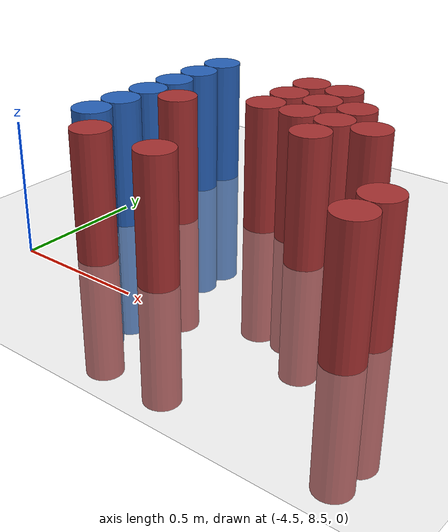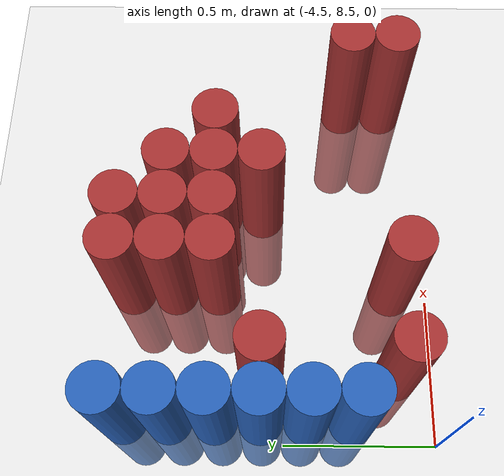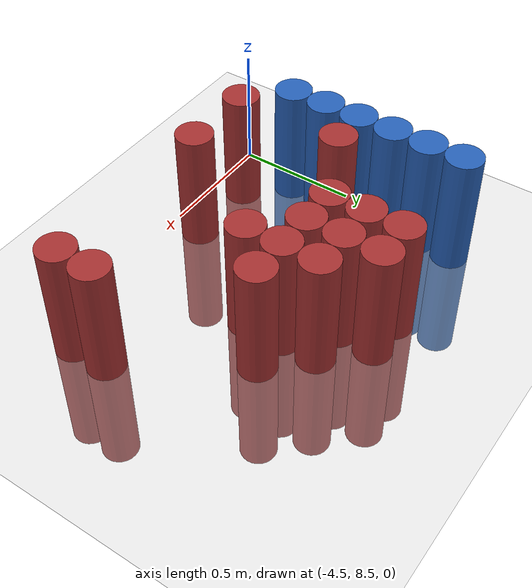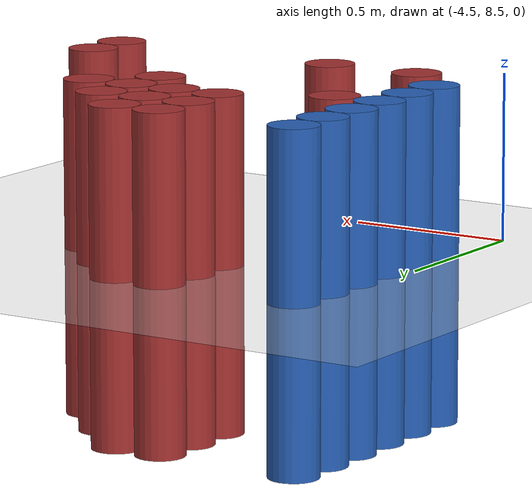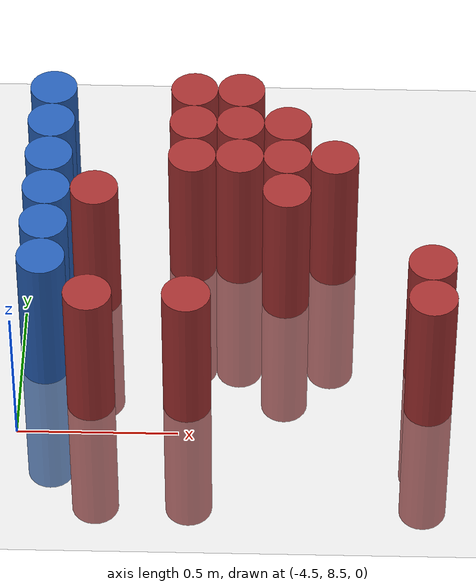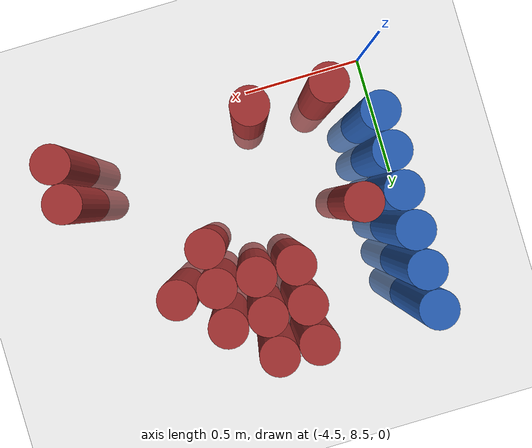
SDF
<sdf version="1.6">
 <world name="default">
  <model name="ground_plane">
   <static>1</static>
   <link name="link">
    <collision name="collision">
     <geometry><plane><normal>0 0 1</normal><size>100 100</size></plane></geometry>
     <surface><friction><ode><mu>100</mu><mu2>50</mu2></ode></friction></surface>
    </collision>
    <visual name="visual">
     <cast_shadows>0</cast_shadows>
     <geometry><plane><normal>0 0 1</normal><size>100 100</size></plane></geometry>
     <material>
      <script><uri>file://media/materials/scripts/gazebo.material</uri><name>Gazebo/Grey</name></script>
     </material>
    </visual>
   </link>
  </model>
  <model name="unit_cylinder_120">
   <static>1</static>
   <pose>-4.425000 8.775000 0.000000 0.000000 0.000000 0.000000</pose>
   <link name="link">
    <inertial>
     <mass>1</mass>
     <inertia><ixx>0.145833</ixx><ixy>0</ixy><ixz>0</ixz><iyy>0.145833</iyy><iyz>0</iyz><izz>0.125</izz></inertia>
    </inertial>
    <collision name="collision">
     <geometry><cylinder><radius>0.075000</radius><length>1</length></cylinder></geometry>
    </collision>
    <visual name="visual">
     <geometry><cylinder><radius>0.075000</radius><length>1</length></cylinder></geometry>
     <material>
      <ambient>0.152000 0.379000 0.720000 1</ambient>
      <diffuse>0.152000 0.379000 0.720000 1</diffuse>
     </material>
     <material>
      <script><name>Gazebo/Grey</name><uri>file://media/materials/scripts/gazebo.material</uri></script>
     </material>
    </visual>
    <sensor name="sensor_contact" type="contact"><contact><collision>collision</collision></contact></sensor>
   </link>
   <plugin filename="gz-sim-touchplugin-system" name="gz::sim::systems::TouchPlugin">
    <target>robot</target>
    <namespace>robot</namespace>
    <time>0.001</time>
    <enabled>true</enabled>
   </plugin>
  </model>
  <model name="unit_cylinder_121">
   <static>1</static>
   <pose>-4.425000 8.925000 0.000000 0.000000 0.000000 0.000000</pose>
   <link name="link">
    <inertial>
     <mass>1</mass>
     <inertia><ixx>0.145833</ixx><ixy>0</ixy><ixz>0</ixz><iyy>0.145833</iyy><iyz>0</iyz><izz>0.125</izz></inertia>
    </inertial>
    <collision name="collision">
     <geometry><cylinder><radius>0.075000</radius><length>1</length></cylinder></geometry>
    </collision>
    <visual name="visual">
     <geometry><cylinder><radius>0.075000</radius><length>1</length></cylinder></geometry>
     <material>
      <ambient>0.152000 0.379000 0.720000 1</ambient>
      <diffuse>0.152000 0.379000 0.720000 1</diffuse>
     </material>
     <material>
      <script><name>Gazebo/Grey</name><uri>file://media/materials/scripts/gazebo.material</uri></script>
     </material>
    </visual>
    <sensor name="sensor_contact" type="contact"><contact><collision>collision</collision></contact></sensor>
   </link>
   <plugin filename="gz-sim-touchplugin-system" name="gz::sim::systems::TouchPlugin">
    <target>robot</target>
    <namespace>robot</namespace>
    <time>0.001</time>
    <enabled>true</enabled>
   </plugin>
  </model>
  <model name="unit_cylinder_122">
   <static>1</static>
   <pose>-4.425000 9.075000 0.000000 0.000000 0.000000 0.000000</pose>
   <link name="link">
    <inertial>
     <mass>1</mass>
     <inertia><ixx>0.145833</ixx><ixy>0</ixy><ixz>0</ixz><iyy>0.145833</iyy><iyz>0</iyz><izz>0.125</izz></inertia>
    </inertial>
    <collision name="collision">
     <geometry><cylinder><radius>0.075000</radius><length>1</length></cylinder></geometry>
    </collision>
    <visual name="visual">
     <geometry><cylinder><radius>0.075000</radius><length>1</length></cylinder></geometry>
     <material>
      <ambient>0.152000 0.379000 0.720000 1</ambient>
      <diffuse>0.152000 0.379000 0.720000 1</diffuse>
     </material>
     <material>
      <script><name>Gazebo/Grey</name><uri>file://media/materials/scripts/gazebo.material</uri></script>
     </material>
    </visual>
    <sensor name="sensor_contact" type="contact"><contact><collision>collision</collision></contact></sensor>
   </link>
   <plugin filename="gz-sim-touchplugin-system" name="gz::sim::systems::TouchPlugin">
    <target>robot</target>
    <namespace>robot</namespace>
    <time>0.001</time>
    <enabled>true</enabled>
   </plugin>
  </model>
  <model name="unit_cylinder_123">
   <static>1</static>
   <pose>-4.425000 9.225000 0.000000 0.000000 0.000000 0.000000</pose>
   <link name="link">
    <inertial>
     <mass>1</mass>
     <inertia><ixx>0.145833</ixx><ixy>0</ixy><ixz>0</ixz><iyy>0.145833</iyy><iyz>0</iyz><izz>0.125</izz></inertia>
    </inertial>
    <collision name="collision">
     <geometry><cylinder><radius>0.075000</radius><length>1</length></cylinder></geometry>
    </collision>
    <visual name="visual">
     <geometry><cylinder><radius>0.075000</radius><length>1</length></cylinder></geometry>
     <material>
      <ambient>0.152000 0.379000 0.720000 1</ambient>
      <diffuse>0.152000 0.379000 0.720000 1</diffuse>
     </material>
     <material>
      <script><name>Gazebo/Grey</name><uri>file://media/materials/scripts/gazebo.material</uri></script>
     </material>
    </visual>
    <sensor name="sensor_contact" type="contact"><contact><collision>collision</collision></contact></sensor>
   </link>
   <plugin filename="gz-sim-touchplugin-system" name="gz::sim::systems::TouchPlugin">
    <target>robot</target>
    <namespace>robot</namespace>
    <time>0.001</time>
    <enabled>true</enabled>
   </plugin>
  </model>
  <model name="unit_cylinder_124">
   <static>1</static>
   <pose>-4.425000 9.375000 0.000000 0.000000 0.000000 0.000000</pose>
   <link name="link">
    <inertial>
     <mass>1</mass>
     <inertia><ixx>0.145833</ixx><ixy>0</ixy><ixz>0</ixz><iyy>0.145833</iyy><iyz>0</iyz><izz>0.125</izz></inertia>
    </inertial>
    <collision name="collision">
     <geometry><cylinder><radius>0.075000</radius><length>1</length></cylinder></geometry>
    </collision>
    <visual name="visual">
     <geometry><cylinder><radius>0.075000</radius><length>1</length></cylinder></geometry>
     <material>
      <ambient>0.152000 0.379000 0.720000 1</ambient>
      <diffuse>0.152000 0.379000 0.720000 1</diffuse>
     </material>
     <material>
      <script><name>Gazebo/Grey</name><uri>file://media/materials/scripts/gazebo.material</uri></script>
     </material>
    </visual>
    <sensor name="sensor_contact" type="contact"><contact><collision>collision</collision></contact></sensor>
   </link>
   <plugin filename="gz-sim-touchplugin-system" name="gz::sim::systems::TouchPlugin">
    <target>robot</target>
    <namespace>robot</namespace>
    <time>0.001</time>
    <enabled>true</enabled>
   </plugin>
  </model>
  <model name="unit_cylinder_125">
   <static>1</static>
   <pose>-4.425000 9.525000 0.000000 0.000000 0.000000 0.000000</pose>
   <link name="link">
    <inertial>
     <mass>1</mass>
     <inertia><ixx>0.145833</ixx><ixy>0</ixy><ixz>0</ixz><iyy>0.145833</iyy><iyz>0</iyz><izz>0.125</izz></inertia>
    </inertial>
    <collision name="collision">
     <geometry><cylinder><radius>0.075000</radius><length>1</length></cylinder></geometry>
    </collision>
    <visual name="visual">
     <geometry><cylinder><radius>0.075000</radius><length>1</length></cylinder></geometry>
     <material>
      <ambient>0.152000 0.379000 0.720000 1</ambient>
      <diffuse>0.152000 0.379000 0.720000 1</diffuse>
     </material>
     <material>
      <script><name>Gazebo/Grey</name><uri>file://media/materials/scripts/gazebo.material</uri></script>
     </material>
    </visual>
    <sensor name="sensor_contact" type="contact"><contact><collision>collision</collision></contact></sensor>
   </link>
   <plugin filename="gz-sim-touchplugin-system" name="gz::sim::systems::TouchPlugin">
    <target>robot</target>
    <namespace>robot</namespace>
    <time>0.001</time>
    <enabled>true</enabled>
   </plugin>
  </model>
  <model name="unit_cylinder_142">
   <static>1</static>
   <pose>-4.275000 8.625000 0.000000 0.000000 0.000000 0.000000</pose>
   <link name="link">
    <inertial>
     <mass>1</mass>
     <inertia><ixx>0.145833</ixx><ixy>0</ixy><ixz>0</ixz><iyy>0.145833</iyy><iyz>0</iyz><izz>0.125</izz></inertia>
    </inertial>
    <collision name="collision">
     <geometry><cylinder><radius>0.075000</radius><length>1</length></cylinder></geometry>
    </collision>
    <visual name="visual">
     <geometry><cylinder><radius>0.075000</radius><length>1</length></cylinder></geometry>
     <material>
      <ambient>0.648000 0.192000 0.192000 1</ambient>
      <diffuse>0.648000 0.192000 0.192000 1</diffuse>
     </material>
     <material>
      <script><name>Gazebo/Grey</name><uri>file://media/materials/scripts/gazebo.material</uri></script>
     </material>
    </visual>
    <sensor name="sensor_contact" type="contact"><contact><collision>collision</collision></contact></sensor>
   </link>
   <plugin filename="gz-sim-touchplugin-system" name="gz::sim::systems::TouchPlugin">
    <target>robot</target>
    <namespace>robot</namespace>
    <time>0.001</time>
    <enabled>true</enabled>
   </plugin>
  </model>
  <model name="unit_cylinder_143">
   <static>1</static>
   <pose>-4.275000 9.075000 0.000000 0.000000 0.000000 0.000000</pose>
   <link name="link">
    <inertial>
     <mass>1</mass>
     <inertia><ixx>0.145833</ixx><ixy>0</ixy><ixz>0</ixz><iyy>0.145833</iyy><iyz>0</iyz><izz>0.125</izz></inertia>
    </inertial>
    <collision name="collision">
     <geometry><cylinder><radius>0.075000</radius><length>1</length></cylinder></geometry>
    </collision>
    <visual name="visual">
     <geometry><cylinder><radius>0.075000</radius><length>1</length></cylinder></geometry>
     <material>
      <ambient>0.648000 0.192000 0.192000 1</ambient>
      <diffuse>0.648000 0.192000 0.192000 1</diffuse>
     </material>
     <material>
      <script><name>Gazebo/Grey</name><uri>file://media/materials/scripts/gazebo.material</uri></script>
     </material>
    </visual>
    <sensor name="sensor_contact" type="contact"><contact><collision>collision</collision></contact></sensor>
   </link>
   <plugin filename="gz-sim-touchplugin-system" name="gz::sim::systems::TouchPlugin">
    <target>robot</target>
    <namespace>robot</namespace>
    <time>0.001</time>
    <enabled>true</enabled>
   </plugin>
  </model>
  <model name="unit_cylinder_160">
   <static>1</static>
   <pose>-3.975000 8.625000 0.000000 0.000000 0.000000 0.000000</pose>
   <link name="link">
    <inertial>
     <mass>1</mass>
     <inertia><ixx>0.145833</ixx><ixy>0</ixy><ixz>0</ixz><iyy>0.145833</iyy><iyz>0</iyz><izz>0.125</izz></inertia>
    </inertial>
    <collision name="collision">
     <geometry><cylinder><radius>0.075000</radius><length>1</length></cylinder></geometry>
    </collision>
    <visual name="visual">
     <geometry><cylinder><radius>0.075000</radius><length>1</length></cylinder></geometry>
     <material>
      <ambient>0.648000 0.192000 0.192000 1</ambient>
      <diffuse>0.648000 0.192000 0.192000 1</diffuse>
     </material>
     <material>
      <script><name>Gazebo/Grey</name><uri>file://media/materials/scripts/gazebo.material</uri></script>
     </material>
    </visual>
    <sensor name="sensor_contact" type="contact"><contact><collision>collision</collision></contact></sensor>
   </link>
   <plugin filename="gz-sim-touchplugin-system" name="gz::sim::systems::TouchPlugin">
    <target>robot</target>
    <namespace>robot</namespace>
    <time>0.001</time>
    <enabled>true</enabled>
   </plugin>
  </model>
  <model name="unit_cylinder_161">
   <static>1</static>
   <pose>-3.975000 9.225000 0.000000 0.000000 0.000000 0.000000</pose>
   <link name="link">
    <inertial>
     <mass>1</mass>
     <inertia><ixx>0.145833</ixx><ixy>0</ixy><ixz>0</ixz><iyy>0.145833</iyy><iyz>0</iyz><izz>0.125</izz></inertia>
    </inertial>
    <collision name="collision">
     <geometry><cylinder><radius>0.075000</radius><length>1</length></cylinder></geometry>
    </collision>
    <visual name="visual">
     <geometry><cylinder><radius>0.075000</radius><length>1</length></cylinder></geometry>
     <material>
      <ambient>0.648000 0.192000 0.192000 1</ambient>
      <diffuse>0.648000 0.192000 0.192000 1</diffuse>
     </material>
     <material>
      <script><name>Gazebo/Grey</name><uri>file://media/materials/scripts/gazebo.material</uri></script>
     </material>
    </visual>
    <sensor name="sensor_contact" type="contact"><contact><collision>collision</collision></contact></sensor>
   </link>
   <plugin filename="gz-sim-touchplugin-system" name="gz::sim::systems::TouchPlugin">
    <target>robot</target>
    <namespace>robot</namespace>
    <time>0.001</time>
    <enabled>true</enabled>
   </plugin>
  </model>
  <model name="unit_cylinder_162">
   <static>1</static>
   <pose>-3.975000 9.375000 0.000000 0.000000 0.000000 0.000000</pose>
   <link name="link">
    <inertial>
     <mass>1</mass>
     <inertia><ixx>0.145833</ixx><ixy>0</ixy><ixz>0</ixz><iyy>0.145833</iyy><iyz>0</iyz><izz>0.125</izz></inertia>
    </inertial>
    <collision name="collision">
     <geometry><cylinder><radius>0.075000</radius><length>1</length></cylinder></geometry>
    </collision>
    <visual name="visual">
     <geometry><cylinder><radius>0.075000</radius><length>1</length></cylinder></geometry>
     <material>
      <ambient>0.648000 0.192000 0.192000 1</ambient>
      <diffuse>0.648000 0.192000 0.192000 1</diffuse>
     </material>
     <material>
      <script><name>Gazebo/Grey</name><uri>file://media/materials/scripts/gazebo.material</uri></script>
     </material>
    </visual>
    <sensor name="sensor_contact" type="contact"><contact><collision>collision</collision></contact></sensor>
   </link>
   <plugin filename="gz-sim-touchplugin-system" name="gz::sim::systems::TouchPlugin">
    <target>robot</target>
    <namespace>robot</namespace>
    <time>0.001</time>
    <enabled>true</enabled>
   </plugin>
  </model>
  <model name="unit_cylinder_163">
   <static>1</static>
   <pose>-3.975000 9.525000 0.000000 0.000000 0.000000 0.000000</pose>
   <link name="link">
    <inertial>
     <mass>1</mass>
     <inertia><ixx>0.145833</ixx><ixy>0</ixy><ixz>0</ixz><iyy>0.145833</iyy><iyz>0</iyz><izz>0.125</izz></inertia>
    </inertial>
    <collision name="collision">
     <geometry><cylinder><radius>0.075000</radius><length>1</length></cylinder></geometry>
    </collision>
    <visual name="visual">
     <geometry><cylinder><radius>0.075000</radius><length>1</length></cylinder></geometry>
     <material>
      <ambient>0.648000 0.192000 0.192000 1</ambient>
      <diffuse>0.648000 0.192000 0.192000 1</diffuse>
     </material>
     <material>
      <script><name>Gazebo/Grey</name><uri>file://media/materials/scripts/gazebo.material</uri></script>
     </material>
    </visual>
    <sensor name="sensor_contact" type="contact"><contact><collision>collision</collision></contact></sensor>
   </link>
   <plugin filename="gz-sim-touchplugin-system" name="gz::sim::systems::TouchPlugin">
    <target>robot</target>
    <namespace>robot</namespace>
    <time>0.001</time>
    <enabled>true</enabled>
   </plugin>
  </model>
  <model name="unit_cylinder_168">
   <static>1</static>
   <pose>-3.825000 9.225000 0.000000 0.000000 0.000000 0.000000</pose>
   <link name="link">
    <inertial>
     <mass>1</mass>
     <inertia><ixx>0.145833</ixx><ixy>0</ixy><ixz>0</ixz><iyy>0.145833</iyy><iyz>0</iyz><izz>0.125</izz></inertia>
    </inertial>
    <collision name="collision">
     <geometry><cylinder><radius>0.075000</radius><length>1</length></cylinder></geometry>
    </collision>
    <visual name="visual">
     <geometry><cylinder><radius>0.075000</radius><length>1</length></cylinder></geometry>
     <material>
      <ambient>0.648000 0.192000 0.192000 1</ambient>
      <diffuse>0.648000 0.192000 0.192000 1</diffuse>
     </material>
     <material>
      <script><name>Gazebo/Grey</name><uri>file://media/materials/scripts/gazebo.material</uri></script>
     </material>
    </visual>
    <sensor name="sensor_contact" type="contact"><contact><collision>collision</collision></contact></sensor>
   </link>
   <plugin filename="gz-sim-touchplugin-system" name="gz::sim::systems::TouchPlugin">
    <target>robot</target>
    <namespace>robot</namespace>
    <time>0.001</time>
    <enabled>true</enabled>
   </plugin>
  </model>
  <model name="unit_cylinder_169">
   <static>1</static>
   <pose>-3.825000 9.375000 0.000000 0.000000 0.000000 0.000000</pose>
   <link name="link">
    <inertial>
     <mass>1</mass>
     <inertia><ixx>0.145833</ixx><ixy>0</ixy><ixz>0</ixz><iyy>0.145833</iyy><iyz>0</iyz><izz>0.125</izz></inertia>
    </inertial>
    <collision name="collision">
     <geometry><cylinder><radius>0.075000</radius><length>1</length></cylinder></geometry>
    </collision>
    <visual name="visual">
     <geometry><cylinder><radius>0.075000</radius><length>1</length></cylinder></geometry>
     <material>
      <ambient>0.648000 0.192000 0.192000 1</ambient>
      <diffuse>0.648000 0.192000 0.192000 1</diffuse>
     </material>
     <material>
      <script><name>Gazebo/Grey</name><uri>file://media/materials/scripts/gazebo.material</uri></script>
     </material>
    </visual>
    <sensor name="sensor_contact" type="contact"><contact><collision>collision</collision></contact></sensor>
   </link>
   <plugin filename="gz-sim-touchplugin-system" name="gz::sim::systems::TouchPlugin">
    <target>robot</target>
    <namespace>robot</namespace>
    <time>0.001</time>
    <enabled>true</enabled>
   </plugin>
  </model>
  <model name="unit_cylinder_170">
   <static>1</static>
   <pose>-3.825000 9.525000 0.000000 0.000000 0.000000 0.000000</pose>
   <link name="link">
    <inertial>
     <mass>1</mass>
     <inertia><ixx>0.145833</ixx><ixy>0</ixy><ixz>0</ixz><iyy>0.145833</iyy><iyz>0</iyz><izz>0.125</izz></inertia>
    </inertial>
    <collision name="collision">
     <geometry><cylinder><radius>0.075000</radius><length>1</length></cylinder></geometry>
    </collision>
    <visual name="visual">
     <geometry><cylinder><radius>0.075000</radius><length>1</length></cylinder></geometry>
     <material>
      <ambient>0.648000 0.192000 0.192000 1</ambient>
      <diffuse>0.648000 0.192000 0.192000 1</diffuse>
     </material>
     <material>
      <script><name>Gazebo/Grey</name><uri>file://media/materials/scripts/gazebo.material</uri></script>
     </material>
    </visual>
    <sensor name="sensor_contact" type="contact"><contact><collision>collision</collision></contact></sensor>
   </link>
   <plugin filename="gz-sim-touchplugin-system" name="gz::sim::systems::TouchPlugin">
    <target>robot</target>
    <namespace>robot</namespace>
    <time>0.001</time>
    <enabled>true</enabled>
   </plugin>
  </model>
  <model name="unit_cylinder_174">
   <static>1</static>
   <pose>-3.675000 9.075000 0.000000 0.000000 0.000000 0.000000</pose>
   <link name="link">
    <inertial>
     <mass>1</mass>
     <inertia><ixx>0.145833</ixx><ixy>0</ixy><ixz>0</ixz><iyy>0.145833</iyy><iyz>0</iyz><izz>0.125</izz></inertia>
    </inertial>
    <collision name="collision">
     <geometry><cylinder><radius>0.075000</radius><length>1</length></cylinder></geometry>
    </collision>
    <visual name="visual">
     <geometry><cylinder><radius>0.075000</radius><length>1</length></cylinder></geometry>
     <material>
      <ambient>0.648000 0.192000 0.192000 1</ambient>
      <diffuse>0.648000 0.192000 0.192000 1</diffuse>
     </material>
     <material>
      <script><name>Gazebo/Grey</name><uri>file://media/materials/scripts/gazebo.material</uri></script>
     </material>
    </visual>
    <sensor name="sensor_contact" type="contact"><contact><collision>collision</collision></contact></sensor>
   </link>
   <plugin filename="gz-sim-touchplugin-system" name="gz::sim::systems::TouchPlugin">
    <target>robot</target>
    <namespace>robot</namespace>
    <time>0.001</time>
    <enabled>true</enabled>
   </plugin>
  </model>
  <model name="unit_cylinder_175">
   <static>1</static>
   <pose>-3.675000 9.225000 0.000000 0.000000 0.000000 0.000000</pose>
   <link name="link">
    <inertial>
     <mass>1</mass>
     <inertia><ixx>0.145833</ixx><ixy>0</ixy><ixz>0</ixz><iyy>0.145833</iyy><iyz>0</iyz><izz>0.125</izz></inertia>
    </inertial>
    <collision name="collision">
     <geometry><cylinder><radius>0.075000</radius><length>1</length></cylinder></geometry>
    </collision>
    <visual name="visual">
     <geometry><cylinder><radius>0.075000</radius><length>1</length></cylinder></geometry>
     <material>
      <ambient>0.648000 0.192000 0.192000 1</ambient>
      <diffuse>0.648000 0.192000 0.192000 1</diffuse>
     </material>
     <material>
      <script><name>Gazebo/Grey</name><uri>file://media/materials/scripts/gazebo.material</uri></script>
     </material>
    </visual>
    <sensor name="sensor_contact" type="contact"><contact><collision>collision</collision></contact></sensor>
   </link>
   <plugin filename="gz-sim-touchplugin-system" name="gz::sim::systems::TouchPlugin">
    <target>robot</target>
    <namespace>robot</namespace>
    <time>0.001</time>
    <enabled>true</enabled>
   </plugin>
  </model>
  <model name="unit_cylinder_176">
   <static>1</static>
   <pose>-3.675000 9.375000 0.000000 0.000000 0.000000 0.000000</pose>
   <link name="link">
    <inertial>
     <mass>1</mass>
     <inertia><ixx>0.145833</ixx><ixy>0</ixy><ixz>0</ixz><iyy>0.145833</iyy><iyz>0</iyz><izz>0.125</izz></inertia>
    </inertial>
    <collision name="collision">
     <geometry><cylinder><radius>0.075000</radius><length>1</length></cylinder></geometry>
    </collision>
    <visual name="visual">
     <geometry><cylinder><radius>0.075000</radius><length>1</length></cylinder></geometry>
     <material>
      <ambient>0.648000 0.192000 0.192000 1</ambient>
      <diffuse>0.648000 0.192000 0.192000 1</diffuse>
     </material>
     <material>
      <script><name>Gazebo/Grey</name><uri>file://media/materials/scripts/gazebo.material</uri></script>
     </material>
    </visual>
    <sensor name="sensor_contact" type="contact"><contact><collision>collision</collision></contact></sensor>
   </link>
   <plugin filename="gz-sim-touchplugin-system" name="gz::sim::systems::TouchPlugin">
    <target>robot</target>
    <namespace>robot</namespace>
    <time>0.001</time>
    <enabled>true</enabled>
   </plugin>
  </model>
  <model name="unit_cylinder_180">
   <static>1</static>
   <pose>-3.525000 9.225000 0.000000 0.000000 0.000000 0.000000</pose>
   <link name="link">
    <inertial>
     <mass>1</mass>
     <inertia><ixx>0.145833</ixx><ixy>0</ixy><ixz>0</ixz><iyy>0.145833</iyy><iyz>0</iyz><izz>0.125</izz></inertia>
    </inertial>
    <collision name="collision">
     <geometry><cylinder><radius>0.075000</radius><length>1</length></cylinder></geometry>
    </collision>
    <visual name="visual">
     <geometry><cylinder><radius>0.075000</radius><length>1</length></cylinder></geometry>
     <material>
      <ambient>0.648000 0.192000 0.192000 1</ambient>
      <diffuse>0.648000 0.192000 0.192000 1</diffuse>
     </material>
     <material>
      <script><name>Gazebo/Grey</name><uri>file://media/materials/scripts/gazebo.material</uri></script>
     </material>
    </visual>
    <sensor name="sensor_contact" type="contact"><contact><collision>collision</collision></contact></sensor>
   </link>
   <plugin filename="gz-sim-touchplugin-system" name="gz::sim::systems::TouchPlugin">
    <target>robot</target>
    <namespace>robot</namespace>
    <time>0.001</time>
    <enabled>true</enabled>
   </plugin>
  </model>
  <model name="unit_cylinder_193">
   <static>1</static>
   <pose>-3.225000 8.625000 0.000000 0.000000 0.000000 0.000000</pose>
   <link name="link">
    <inertial>
     <mass>1</mass>
     <inertia><ixx>0.145833</ixx><ixy>0</ixy><ixz>0</ixz><iyy>0.145833</iyy><iyz>0</iyz><izz>0.125</izz></inertia>
    </inertial>
    <collision name="collision">
     <geometry><cylinder><radius>0.075000</radius><length>1</length></cylinder></geometry>
    </collision>
    <visual name="visual">
     <geometry><cylinder><radius>0.075000</radius><length>1</length></cylinder></geometry>
     <material>
      <ambient>0.648000 0.192000 0.192000 1</ambient>
      <diffuse>0.648000 0.192000 0.192000 1</diffuse>
     </material>
     <material>
      <script><name>Gazebo/Grey</name><uri>file://media/materials/scripts/gazebo.material</uri></script>
     </material>
    </visual>
    <sensor name="sensor_contact" type="contact"><contact><collision>collision</collision></contact></sensor>
   </link>
   <plugin filename="gz-sim-touchplugin-system" name="gz::sim::systems::TouchPlugin">
    <target>robot</target>
    <namespace>robot</namespace>
    <time>0.001</time>
    <enabled>true</enabled>
   </plugin>
  </model>
  <model name="unit_cylinder_194">
   <static>1</static>
   <pose>-3.225000 8.775000 0.000000 0.000000 0.000000 0.000000</pose>
   <link name="link">
    <inertial>
     <mass>1</mass>
     <inertia><ixx>0.145833</ixx><ixy>0</ixy><ixz>0</ixz><iyy>0.145833</iyy><iyz>0</iyz><izz>0.125</izz></inertia>
    </inertial>
    <collision name="collision">
     <geometry><cylinder><radius>0.075000</radius><length>1</length></cylinder></geometry>
    </collision>
    <visual name="visual">
     <geometry><cylinder><radius>0.075000</radius><length>1</length></cylinder></geometry>
     <material>
      <ambient>0.648000 0.192000 0.192000 1</ambient>
      <diffuse>0.648000 0.192000 0.192000 1</diffuse>
     </material>
     <material>
      <script><name>Gazebo/Grey</name><uri>file://media/materials/scripts/gazebo.material</uri></script>
     </material>
    </visual>
    <sensor name="sensor_contact" type="contact"><contact><collision>collision</collision></contact></sensor>
   </link>
   <plugin filename="gz-sim-touchplugin-system" name="gz::sim::systems::TouchPlugin">
    <target>robot</target>
    <namespace>robot</namespace>
    <time>0.001</time>
    <enabled>true</enabled>
   </plugin>
  </model>
 </world>
</sdf>
